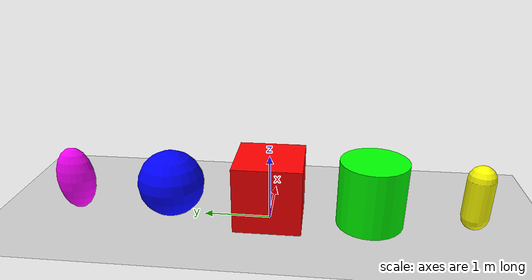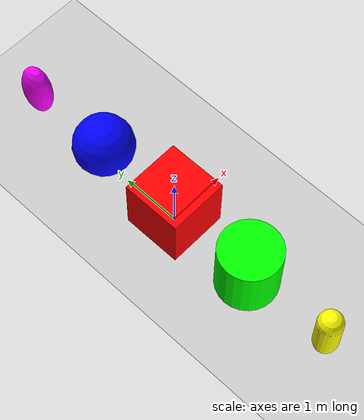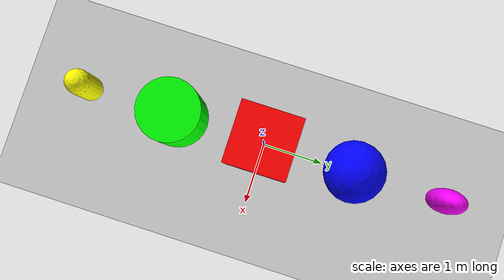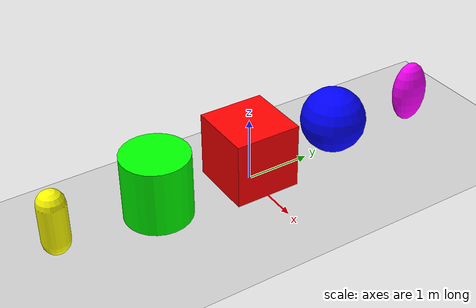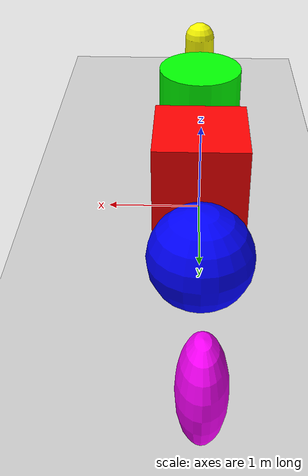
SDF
<?xml version="1.0" ?>
<sdf version="1.6">
  <world name="minimal_scene">
    <physics name="1ms" type="ignored">
      <max_step_size>0.001</max_step_size>
      <real_time_factor>1.0</real_time_factor>
    </physics>
    <plugin
      filename="ignition-gazebo-physics-system"
      name="ignition::gazebo::systems::Physics">
    </plugin>
    <plugin
      filename="ignition-gazebo-user-commands-system"
      name="ignition::gazebo::systems::UserCommands">
    </plugin>

    <gui fullscreen="0">

      <!-- 3D scene -->
      <plugin filename="MinimalScene" name="3D View">
        <ignition-gui>
          <title>3D View</title>
          <property type="bool" key="showTitleBar">false</property>
          <property type="string" key="state">docked</property>
        </ignition-gui>

        <engine>ogre2</engine>
        <scene>scene</scene>
        <ambient_light>0.4 0.4 0.4</ambient_light>
        <background_color>0.8 0.8 0.8</background_color>
        <camera_pose>-6 0 6 0 0.5 0</camera_pose>
      </plugin>

      <!-- Plugins that add functionality to the scene -->
      <plugin filename="GzSceneManager" name="Scene Manager">
        <ignition-gui>
          <anchors target="3D View">
            <line own="right" target="right"/>
            <line own="top" target="top"/>
          </anchors>
          <property key="resizable" type="bool">false</property>
          <property key="width" type="double">5</property>
          <property key="height" type="double">5</property>
          <property key="state" type="string">floating</property>
          <property key="showTitleBar" type="bool">false</property>
        </ignition-gui>
      </plugin>
      <plugin filename="InteractiveViewControl" name="Interactive view control">
        <ignition-gui>
          <anchors target="3D View">
            <line own="right" target="right"/>
            <line own="top" target="top"/>
          </anchors>
          <property key="resizable" type="bool">false</property>
          <property key="width" type="double">5</property>
          <property key="height" type="double">5</property>
          <property key="state" type="string">floating</property>
          <property key="showTitleBar" type="bool">false</property>
        </ignition-gui>
      </plugin>
      <plugin filename="CameraTracking" name="Camera Tracking">
        <ignition-gui>
          <anchors target="3D View">
            <line own="right" target="right"/>
            <line own="top" target="top"/>
          </anchors>
          <property key="resizable" type="bool">false</property>
          <property key="width" type="double">5</property>
          <property key="height" type="double">5</property>
          <property key="state" type="string">floating</property>
          <property key="showTitleBar" type="bool">false</property>
        </ignition-gui>
      </plugin>
      <plugin filename="MarkerManager" name="Marker manager">
        <ignition-gui>
          <anchors target="3D View">
            <line own="right" target="right"/>
            <line own="top" target="top"/>
          </anchors>
          <property key="resizable" type="bool">false</property>
          <property key="width" type="double">5</property>
          <property key="height" type="double">5</property>
          <property key="state" type="string">floating</property>
          <property key="showTitleBar" type="bool">false</property>
        </ignition-gui>
      </plugin>
      <plugin filename="SelectEntities" name="Select Entities">
        <ignition-gui>
          <anchors target="Select entities">
            <line own="right" target="right"/>
            <line own="top" target="top"/>
          </anchors>
          <property key="resizable" type="bool">false</property>
          <property key="width" type="double">5</property>
          <property key="height" type="double">5</property>
          <property key="state" type="string">floating</property>
          <property key="showTitleBar" type="bool">false</property>
        </ignition-gui>
      </plugin>

      <!-- World control -->
      <plugin filename="WorldControl" name="World control">
        <ignition-gui>
          <title>World control</title>
          <property type="bool" key="showTitleBar">false</property>
          <property type="bool" key="resizable">false</property>
          <property type="double" key="height">72</property>
          <property type="double" key="width">121</property>
          <property type="double" key="z">1</property>

          <property type="string" key="state">floating</property>
          <anchors target="3D View">
            <line own="left" target="left"/>
            <line own="bottom" target="bottom"/>
          </anchors>
        </ignition-gui>

        <play_pause>true</play_pause>
        <step>true</step>
        <start_paused>true</start_paused>
      </plugin>

      <plugin filename="VisualizationCapabilities" name="Visualization Capabilities">
        <ignition-gui>
          <anchors target="Select entities">
            <line own="right" target="right"/>
            <line own="top" target="top"/>
          </anchors>
          <property key="resizable" type="bool">false</property>
          <property key="width" type="double">5</property>
          <property key="height" type="double">5</property>
          <property key="state" type="string">floating</property>
          <property key="showTitleBar" type="bool">false</property>
        </ignition-gui>
      </plugin>

      <!-- World statistics -->
      <plugin filename="WorldStats" name="World stats">
        <ignition-gui>
          <title>World stats</title>
          <property type="bool" key="showTitleBar">false</property>
          <property type="bool" key="resizable">false</property>
          <property type="double" key="height">110</property>
          <property type="double" key="width">290</property>
          <property type="double" key="z">1</property>

          <property type="string" key="state">floating</property>
          <anchors target="3D View">
            <line own="right" target="right"/>
            <line own="bottom" target="bottom"/>
          </anchors>
        </ignition-gui>

        <sim_time>true</sim_time>
        <real_time>true</real_time>
        <real_time_factor>true</real_time_factor>
        <iterations>true</iterations>
      </plugin>

      <plugin filename="Spawn" name="Spawn Entities">
        <ignition-gui>
          <anchors target="Select entities">
            <line own="right" target="right"/>
            <line own="top" target="top"/>
          </anchors>
          <property key="resizable" type="bool">false</property>
          <property key="width" type="double">5</property>
          <property key="height" type="double">5</property>
          <property key="state" type="string">floating</property>
          <property key="showTitleBar" type="bool">false</property>
        </ignition-gui>
      </plugin>

      <!-- Insert simple shapes -->
      <plugin filename="Shapes" name="Shapes">
        <ignition-gui>
          <property key="resizable" type="bool">false</property>
          <property key="x" type="double">0</property>
          <property key="y" type="double">0</property>
          <property key="width" type="double">250</property>
          <property key="height" type="double">50</property>
          <property key="state" type="string">floating</property>
          <property key="showTitleBar" type="bool">false</property>
          <property key="cardBackground" type="string">#666666</property>
        </ignition-gui>
      </plugin>

      <!-- Insert lights -->
      <plugin filename="Lights" name="Lights">
        <ignition-gui>
          <property key="resizable" type="bool">false</property>
          <property key="x" type="double">250</property>
          <property key="y" type="double">0</property>
          <property key="width" type="double">150</property>
          <property key="height" type="double">50</property>
          <property key="state" type="string">floating</property>
          <property key="showTitleBar" type="bool">false</property>
          <property key="cardBackground" type="string">#666666</property>
        </ignition-gui>
      </plugin>

      <!-- Translate / rotate -->
      <plugin filename="TransformControl" name="Transform control">
        <ignition-gui>
          <property key="resizable" type="bool">false</property>
          <property key="x" type="double">0</property>
          <property key="y" type="double">50</property>
          <property key="width" type="double">250</property>
          <property key="height" type="double">50</property>
          <property key="state" type="string">floating</property>
          <property key="showTitleBar" type="bool">false</property>
          <property key="cardBackground" type="string">#777777</property>
        </ignition-gui>

        <!-- disable legacy features used to connect this plugin to GzScene3D -->
        <legacy>false</legacy>
      </plugin>

      <!-- Screenshot -->
      <plugin filename="Screenshot" name="Screenshot">
        <ignition-gui>
          <property key="resizable" type="bool">false</property>
          <property key="x" type="double">250</property>
          <property key="y" type="double">50</property>
          <property key="width" type="double">50</property>
          <property key="height" type="double">50</property>
          <property key="state" type="string">floating</property>
          <property key="showTitleBar" type="bool">false</property>
          <property key="cardBackground" type="string">#777777</property>
        </ignition-gui>
      </plugin>

      <!-- Inspector -->
      <plugin filename="ComponentInspector" name="Component inspector">
        <ignition-gui>
          <property type="bool" key="showTitleBar">false</property>
          <property type="string" key="state">docked</property>
        </ignition-gui>
      </plugin>

      <!-- Entity tree -->
      <plugin filename="EntityTree" name="Entity tree">
        <ignition-gui>
          <property type="bool" key="showTitleBar">false</property>
          <property type="string" key="state">docked</property>
        </ignition-gui>
      </plugin>

      <!-- View angle -->
      <plugin filename="ViewAngle" name="View angle">
        <ignition-gui>
          <property type="string" key="state">docked</property>
        </ignition-gui>

        <!-- disable legacy features used to connect this plugin to GzScene3D -->
        <legacy>false</legacy>
      </plugin>

    </gui>

    <light type="directional" name="sun">
      <cast_shadows>true</cast_shadows>
      <pose>0 0 10 0 0 0</pose>
      <diffuse>0.8 0.8 0.8 1</diffuse>
      <specular>0.2 0.2 0.2 1</specular>
      <attenuation>
        <range>1000</range>
        <constant>0.9</constant>
        <linear>0.01</linear>
        <quadratic>0.001</quadratic>
      </attenuation>
      <direction>-0.5 0.1 -0.9</direction>
    </light>

    <model name="ground_plane">
      <static>true</static>
      <link name="link">
        <collision name="collision">
          <geometry>
            <plane>
              <normal>0 0 1</normal>
              <size>100 100</size>
            </plane>
          </geometry>
        </collision>
        <visual name="visual">
          <geometry>
            <plane>
              <normal>0 0 1</normal>
              <size>100 100</size>
            </plane>
          </geometry>
          <material>
            <ambient>0.8 0.8 0.8 1</ambient>
            <diffuse>0.8 0.8 0.8 1</diffuse>
            <specular>0.8 0.8 0.8 1</specular>
          </material>
        </visual>
      </link>
    </model>

    <model name="box">
      <pose>0 0 0.5 0 0 0</pose>
      <link name="box_link">
        <inertial>
          <inertia>
            <ixx>0.16666</ixx>
            <ixy>0</ixy>
            <ixz>0</ixz>
            <iyy>0.16666</iyy>
            <iyz>0</iyz>
            <izz>0.16666</izz>
          </inertia>
          <mass>1.0</mass>
        </inertial>
        <collision name="box_collision">
          <geometry>
            <box>
              <size>1 1 1</size>
            </box>
          </geometry>
        </collision>

        <visual name="box_visual">
          <geometry>
            <box>
              <size>1 1 1</size>
            </box>
          </geometry>
          <material>
            <ambient>1 0 0 1</ambient>
            <diffuse>1 0 0 1</diffuse>
            <specular>1 0 0 1</specular>
          </material>
        </visual>
      </link>
    </model>

    <model name="cylinder">
      <pose>0 -1.5 0.5 0 0 0</pose>
      <link name="cylinder_link">
        <inertial>
          <inertia>
            <ixx>0.1458</ixx>
            <ixy>0</ixy>
            <ixz>0</ixz>
            <iyy>0.1458</iyy>
            <iyz>0</iyz>
            <izz>0.125</izz>
          </inertia>
          <mass>1.0</mass>
        </inertial>
        <collision name="cylinder_collision">
          <geometry>
            <cylinder>
              <radius>0.5</radius>
              <length>1.0</length>
            </cylinder>
          </geometry>
        </collision>

        <visual name="cylinder_visual">
          <geometry>
            <cylinder>
              <radius>0.5</radius>
              <length>1.0</length>
            </cylinder>
          </geometry>
          <material>
            <ambient>0 1 0 1</ambient>
            <diffuse>0 1 0 1</diffuse>
            <specular>0 1 0 1</specular>
          </material>
        </visual>
      </link>
    </model>

    <model name="sphere">
      <pose>0 1.5 0.5 0 0 0</pose>
      <link name="sphere_link">
        <inertial>
          <inertia>
            <ixx>0.1</ixx>
            <ixy>0</ixy>
            <ixz>0</ixz>
            <iyy>0.1</iyy>
            <iyz>0</iyz>
            <izz>0.1</izz>
          </inertia>
          <mass>1.0</mass>
        </inertial>
        <collision name="sphere_collision">
          <geometry>
            <sphere>
              <radius>0.5</radius>
            </sphere>
          </geometry>
        </collision>

        <visual name="sphere_visual">
          <geometry>
            <sphere>
              <radius>0.5</radius>
            </sphere>
          </geometry>
          <material>
            <ambient>0 0 1 1</ambient>
            <diffuse>0 0 1 1</diffuse>
            <specular>0 0 1 1</specular>
          </material>
        </visual>
      </link>
    </model>

    <model name="capsule">
      <pose>0 -3.0 0.5 0 0 0</pose>
      <link name="capsule_link">
        <inertial>
          <inertia>
            <ixx>0.074154</ixx>
            <ixy>0</ixy>
            <ixz>0</ixz>
            <iyy>0.074154</iyy>
            <iyz>0</iyz>
            <izz>0.018769</izz>
          </inertia>
          <mass>1.0</mass>
        </inertial>
        <collision name="capsule_collision">
          <geometry>
            <capsule>
              <radius>0.2</radius>
              <length>0.6</length>
            </capsule>
          </geometry>
        </collision>
        <visual name="capsule_visual">
          <geometry>
            <capsule>
              <radius>0.2</radius>
              <length>0.6</length>
            </capsule>
          </geometry>
          <material>
            <ambient>1 1 0 1</ambient>
            <diffuse>1 1 0 1</diffuse>
            <specular>1 1 0 1</specular>
          </material>
        </visual>
      </link>
    </model>

    <model name="ellipsoid">
      <pose>0 3.0 0.5 0 0 0</pose>
      <link name="ellipsoid_link">
        <inertial>
          <inertia>
            <ixx>0.068</ixx>
            <ixy>0</ixy>
            <ixz>0</ixz>
            <iyy>0.058</iyy>
            <iyz>0</iyz>
            <izz>0.026</izz>
          </inertia>
          <mass>1.0</mass>
        </inertial>
        <collision name="ellipsoid_collision">
          <geometry>
            <ellipsoid>
              <radii>0.2 0.3 0.5</radii>
            </ellipsoid>
          </geometry>
        </collision>
        <visual name="ellipsoid_visual">
          <geometry>
            <ellipsoid>
              <radii>0.2 0.3 0.5</radii>
            </ellipsoid>
          </geometry>
          <material>
            <ambient>1 0 1 1</ambient>
            <diffuse>1 0 1 1</diffuse>
            <specular>1 0 1 1</specular>
          </material>
        </visual>
      </link>
    </model>
  </world>
</sdf>
